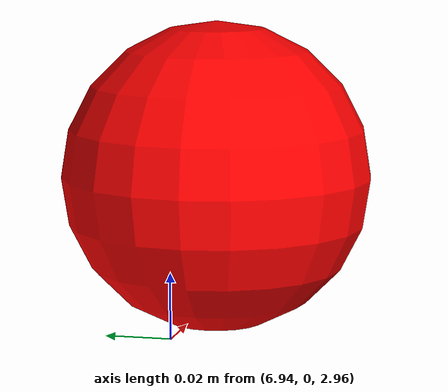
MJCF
<mujoco model="bro">
<compiler inertiafromgeom="true" angle="radian" coordinate="local"/>
<option timestep="0.01" gravity="0 0 -9.81" iterations="20" integrator="Euler" />

<default>
<geom  solimp="1 1 0.01" solref="0.01 0.5"/>
</default>
  <asset>
    <texture name="texplane" type="2d" builtin="checker" rgb1=".2 .3 .4" rgb2=".1 0.15 0.2" width="512" height="512"/>
    <material name="MatPlane" texture="texplane" texrepeat="1 1" texuniform="true"/>
  </asset>

<worldbody>

<light diffuse=".5 .5 .5" dir="0 0 -1" pos="0 0 3"/>
<geom name="table" condim="3" size="4 2.3 0.05" pos="3 0 0" type="plane"  material="MatPlane"/>

<body name="object" pos="7 0 3">

<joint name="object\_joint" type="free" damping="0.001"/>
<geom name="object\_geom" size="0.05" rgba="1 0 0 1" type="sphere" mass="0.027" />

</body>

</worldbody>

</mujoco>
